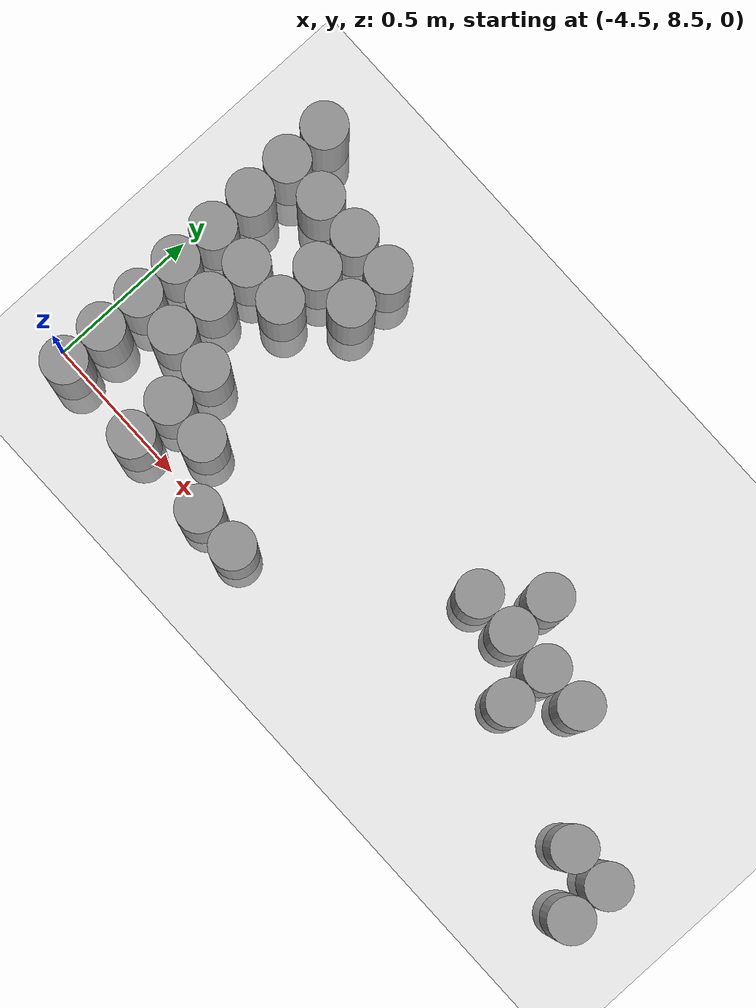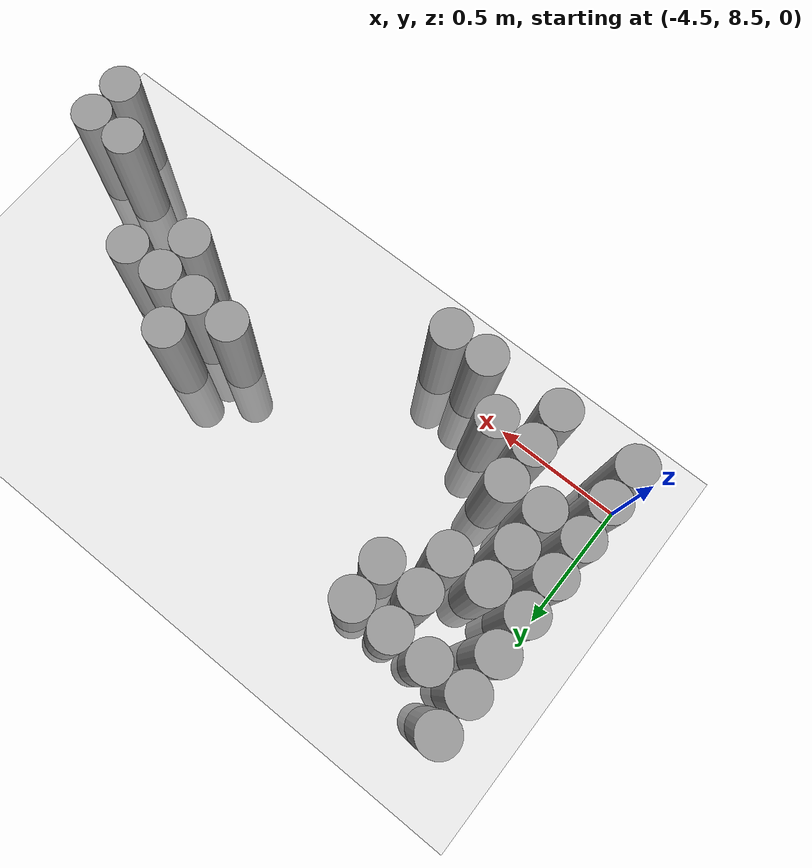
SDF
<sdf version="1.6">
 <world name="default">
  <model name="ground_plane">
   <static>1</static>
   <static>1</static>
   <link name="link">
    <collision name="collision">
     <geometry><plane><normal>0 0 1</normal><size>100 100</size></plane></geometry>
     <surface><friction><ode><mu>100</mu><mu2>50</mu2></ode></friction></surface>
    </collision>
    <visual name="visual">
     <cast_shadows>0</cast_shadows>
     <geometry><plane><normal>0 0 1</normal><size>100 100</size></plane></geometry>
     <material>
      <script><uri>file://media/materials/scripts/gazebo.material</uri><name>Gazebo/Grey</name></script>
     </material>
    </visual>
   </link>
  </model>
  <model name="unit_cylinder_118">
   <static>1</static>
   <pose>-4.425000 8.475000 0.000000 0.000000 0.000000 0.000000</pose>
   <link name="link">
    <inertial>
     <mass>1</mass>
     <inertia><ixx>0.145833</ixx><ixy>0</ixy><ixz>0</ixz><iyy>0.145833</iyy><iyz>0</iyz><izz>0.125</izz></inertia>
    </inertial>
    <collision name="collision">
     <geometry><cylinder><radius>0.075000</radius><length>1</length></cylinder></geometry>
    </collision>
    <visual name="visual">
     <geometry><cylinder><radius>0.075000</radius><length>1</length></cylinder></geometry>
     <material>
      <script><name>Gazebo/Grey</name><uri>file://media/materials/scripts/gazebo.material</uri></script>
     </material>
    </visual>
   </link>
  </model>
  <model name="unit_cylinder_119">
   <static>1</static>
   <pose>-4.425000 8.625000 0.000000 0.000000 0.000000 0.000000</pose>
   <link name="link">
    <inertial>
     <mass>1</mass>
     <inertia><ixx>0.145833</ixx><ixy>0</ixy><ixz>0</ixz><iyy>0.145833</iyy><iyz>0</iyz><izz>0.125</izz></inertia>
    </inertial>
    <collision name="collision">
     <geometry><cylinder><radius>0.075000</radius><length>1</length></cylinder></geometry>
    </collision>
    <visual name="visual">
     <geometry><cylinder><radius>0.075000</radius><length>1</length></cylinder></geometry>
     <material>
      <script><name>Gazebo/Grey</name><uri>file://media/materials/scripts/gazebo.material</uri></script>
     </material>
    </visual>
   </link>
  </model>
  <model name="unit_cylinder_120">
   <static>1</static>
   <pose>-4.425000 8.775000 0.000000 0.000000 0.000000 0.000000</pose>
   <link name="link">
    <inertial>
     <mass>1</mass>
     <inertia><ixx>0.145833</ixx><ixy>0</ixy><ixz>0</ixz><iyy>0.145833</iyy><iyz>0</iyz><izz>0.125</izz></inertia>
    </inertial>
    <collision name="collision">
     <geometry><cylinder><radius>0.075000</radius><length>1</length></cylinder></geometry>
    </collision>
    <visual name="visual">
     <geometry><cylinder><radius>0.075000</radius><length>1</length></cylinder></geometry>
     <material>
      <script><name>Gazebo/Grey</name><uri>file://media/materials/scripts/gazebo.material</uri></script>
     </material>
    </visual>
   </link>
  </model>
  <model name="unit_cylinder_121">
   <static>1</static>
   <pose>-4.425000 8.925000 0.000000 0.000000 0.000000 0.000000</pose>
   <link name="link">
    <inertial>
     <mass>1</mass>
     <inertia><ixx>0.145833</ixx><ixy>0</ixy><ixz>0</ixz><iyy>0.145833</iyy><iyz>0</iyz><izz>0.125</izz></inertia>
    </inertial>
    <collision name="collision">
     <geometry><cylinder><radius>0.075000</radius><length>1</length></cylinder></geometry>
    </collision>
    <visual name="visual">
     <geometry><cylinder><radius>0.075000</radius><length>1</length></cylinder></geometry>
     <material>
      <script><name>Gazebo/Grey</name><uri>file://media/materials/scripts/gazebo.material</uri></script>
     </material>
    </visual>
   </link>
  </model>
  <model name="unit_cylinder_122">
   <static>1</static>
   <pose>-4.425000 9.075000 0.000000 0.000000 0.000000 0.000000</pose>
   <link name="link">
    <inertial>
     <mass>1</mass>
     <inertia><ixx>0.145833</ixx><ixy>0</ixy><ixz>0</ixz><iyy>0.145833</iyy><iyz>0</iyz><izz>0.125</izz></inertia>
    </inertial>
    <collision name="collision">
     <geometry><cylinder><radius>0.075000</radius><length>1</length></cylinder></geometry>
    </collision>
    <visual name="visual">
     <geometry><cylinder><radius>0.075000</radius><length>1</length></cylinder></geometry>
     <material>
      <script><name>Gazebo/Grey</name><uri>file://media/materials/scripts/gazebo.material</uri></script>
     </material>
    </visual>
   </link>
  </model>
  <model name="unit_cylinder_123">
   <static>1</static>
   <pose>-4.425000 9.225000 0.000000 0.000000 0.000000 0.000000</pose>
   <link name="link">
    <inertial>
     <mass>1</mass>
     <inertia><ixx>0.145833</ixx><ixy>0</ixy><ixz>0</ixz><iyy>0.145833</iyy><iyz>0</iyz><izz>0.125</izz></inertia>
    </inertial>
    <collision name="collision">
     <geometry><cylinder><radius>0.075000</radius><length>1</length></cylinder></geometry>
    </collision>
    <visual name="visual">
     <geometry><cylinder><radius>0.075000</radius><length>1</length></cylinder></geometry>
     <material>
      <script><name>Gazebo/Grey</name><uri>file://media/materials/scripts/gazebo.material</uri></script>
     </material>
    </visual>
   </link>
  </model>
  <model name="unit_cylinder_124">
   <static>1</static>
   <pose>-4.425000 9.375000 0.000000 0.000000 0.000000 0.000000</pose>
   <link name="link">
    <inertial>
     <mass>1</mass>
     <inertia><ixx>0.145833</ixx><ixy>0</ixy><ixz>0</ixz><iyy>0.145833</iyy><iyz>0</iyz><izz>0.125</izz></inertia>
    </inertial>
    <collision name="collision">
     <geometry><cylinder><radius>0.075000</radius><length>1</length></cylinder></geometry>
    </collision>
    <visual name="visual">
     <geometry><cylinder><radius>0.075000</radius><length>1</length></cylinder></geometry>
     <material>
      <script><name>Gazebo/Grey</name><uri>file://media/materials/scripts/gazebo.material</uri></script>
     </material>
    </visual>
   </link>
  </model>
  <model name="unit_cylinder_125">
   <static>1</static>
   <pose>-4.425000 9.525000 0.000000 0.000000 0.000000 0.000000</pose>
   <link name="link">
    <inertial>
     <mass>1</mass>
     <inertia><ixx>0.145833</ixx><ixy>0</ixy><ixz>0</ixz><iyy>0.145833</iyy><iyz>0</iyz><izz>0.125</izz></inertia>
    </inertial>
    <collision name="collision">
     <geometry><cylinder><radius>0.075000</radius><length>1</length></cylinder></geometry>
    </collision>
    <visual name="visual">
     <geometry><cylinder><radius>0.075000</radius><length>1</length></cylinder></geometry>
     <material>
      <script><name>Gazebo/Grey</name><uri>file://media/materials/scripts/gazebo.material</uri></script>
     </material>
    </visual>
   </link>
  </model>
  <model name="unit_cylinder_130">
   <static>1</static>
   <pose>-4.275000 8.775000 0.000000 0.000000 0.000000 0.000000</pose>
   <link name="link">
    <inertial>
     <mass>1</mass>
     <inertia><ixx>0.145833</ixx><ixy>0</ixy><ixz>0</ixz><iyy>0.145833</iyy><iyz>0</iyz><izz>0.125</izz></inertia>
    </inertial>
    <collision name="collision">
     <geometry><cylinder><radius>0.075000</radius><length>1</length></cylinder></geometry>
    </collision>
    <visual name="visual">
     <geometry><cylinder><radius>0.075000</radius><length>1</length></cylinder></geometry>
     <material>
      <script><name>Gazebo/Grey</name><uri>file://media/materials/scripts/gazebo.material</uri></script>
     </material>
    </visual>
   </link>
  </model>
  <model name="unit_cylinder_131">
   <static>1</static>
   <pose>-4.275000 8.925000 0.000000 0.000000 0.000000 0.000000</pose>
   <link name="link">
    <inertial>
     <mass>1</mass>
     <inertia><ixx>0.145833</ixx><ixy>0</ixy><ixz>0</ixz><iyy>0.145833</iyy><iyz>0</iyz><izz>0.125</izz></inertia>
    </inertial>
    <collision name="collision">
     <geometry><cylinder><radius>0.075000</radius><length>1</length></cylinder></geometry>
    </collision>
    <visual name="visual">
     <geometry><cylinder><radius>0.075000</radius><length>1</length></cylinder></geometry>
     <material>
      <script><name>Gazebo/Grey</name><uri>file://media/materials/scripts/gazebo.material</uri></script>
     </material>
    </visual>
   </link>
  </model>
  <model name="unit_cylinder_132">
   <static>1</static>
   <pose>-4.275000 9.075000 0.000000 0.000000 0.000000 0.000000</pose>
   <link name="link">
    <inertial>
     <mass>1</mass>
     <inertia><ixx>0.145833</ixx><ixy>0</ixy><ixz>0</ixz><iyy>0.145833</iyy><iyz>0</iyz><izz>0.125</izz></inertia>
    </inertial>
    <collision name="collision">
     <geometry><cylinder><radius>0.075000</radius><length>1</length></cylinder></geometry>
    </collision>
    <visual name="visual">
     <geometry><cylinder><radius>0.075000</radius><length>1</length></cylinder></geometry>
     <material>
      <script><name>Gazebo/Grey</name><uri>file://media/materials/scripts/gazebo.material</uri></script>
     </material>
    </visual>
   </link>
  </model>
  <model name="unit_cylinder_133">
   <static>1</static>
   <pose>-4.275000 9.375000 0.000000 0.000000 0.000000 0.000000</pose>
   <link name="link">
    <inertial>
     <mass>1</mass>
     <inertia><ixx>0.145833</ixx><ixy>0</ixy><ixz>0</ixz><iyy>0.145833</iyy><iyz>0</iyz><izz>0.125</izz></inertia>
    </inertial>
    <collision name="collision">
     <geometry><cylinder><radius>0.075000</radius><length>1</length></cylinder></geometry>
    </collision>
    <visual name="visual">
     <geometry><cylinder><radius>0.075000</radius><length>1</length></cylinder></geometry>
     <material>
      <script><name>Gazebo/Grey</name><uri>file://media/materials/scripts/gazebo.material</uri></script>
     </material>
    </visual>
   </link>
  </model>
  <model name="unit_cylinder_137">
   <static>1</static>
   <pose>-4.125000 8.475000 0.000000 0.000000 0.000000 0.000000</pose>
   <link name="link">
    <inertial>
     <mass>1</mass>
     <inertia><ixx>0.145833</ixx><ixy>0</ixy><ixz>0</ixz><iyy>0.145833</iyy><iyz>0</iyz><izz>0.125</izz></inertia>
    </inertial>
    <collision name="collision">
     <geometry><cylinder><radius>0.075000</radius><length>1</length></cylinder></geometry>
    </collision>
    <visual name="visual">
     <geometry><cylinder><radius>0.075000</radius><length>1</length></cylinder></geometry>
     <material>
      <script><name>Gazebo/Grey</name><uri>file://media/materials/scripts/gazebo.material</uri></script>
     </material>
    </visual>
   </link>
  </model>
  <model name="unit_cylinder_138">
   <static>1</static>
   <pose>-4.125000 8.625000 0.000000 0.000000 0.000000 0.000000</pose>
   <link name="link">
    <inertial>
     <mass>1</mass>
     <inertia><ixx>0.145833</ixx><ixy>0</ixy><ixz>0</ixz><iyy>0.145833</iyy><iyz>0</iyz><izz>0.125</izz></inertia>
    </inertial>
    <collision name="collision">
     <geometry><cylinder><radius>0.075000</radius><length>1</length></cylinder></geometry>
    </collision>
    <visual name="visual">
     <geometry><cylinder><radius>0.075000</radius><length>1</length></cylinder></geometry>
     <material>
      <script><name>Gazebo/Grey</name><uri>file://media/materials/scripts/gazebo.material</uri></script>
     </material>
    </visual>
   </link>
  </model>
  <model name="unit_cylinder_139">
   <static>1</static>
   <pose>-4.125000 8.775000 0.000000 0.000000 0.000000 0.000000</pose>
   <link name="link">
    <inertial>
     <mass>1</mass>
     <inertia><ixx>0.145833</ixx><ixy>0</ixy><ixz>0</ixz><iyy>0.145833</iyy><iyz>0</iyz><izz>0.125</izz></inertia>
    </inertial>
    <collision name="collision">
     <geometry><cylinder><radius>0.075000</radius><length>1</length></cylinder></geometry>
    </collision>
    <visual name="visual">
     <geometry><cylinder><radius>0.075000</radius><length>1</length></cylinder></geometry>
     <material>
      <script><name>Gazebo/Grey</name><uri>file://media/materials/scripts/gazebo.material</uri></script>
     </material>
    </visual>
   </link>
  </model>
  <model name="unit_cylinder_140">
   <static>1</static>
   <pose>-4.125000 9.075000 0.000000 0.000000 0.000000 0.000000</pose>
   <link name="link">
    <inertial>
     <mass>1</mass>
     <inertia><ixx>0.145833</ixx><ixy>0</ixy><ixz>0</ixz><iyy>0.145833</iyy><iyz>0</iyz><izz>0.125</izz></inertia>
    </inertial>
    <collision name="collision">
     <geometry><cylinder><radius>0.075000</radius><length>1</length></cylinder></geometry>
    </collision>
    <visual name="visual">
     <geometry><cylinder><radius>0.075000</radius><length>1</length></cylinder></geometry>
     <material>
      <script><name>Gazebo/Grey</name><uri>file://media/materials/scripts/gazebo.material</uri></script>
     </material>
    </visual>
   </link>
  </model>
  <model name="unit_cylinder_141">
   <static>1</static>
   <pose>-4.125000 9.225000 0.000000 0.000000 0.000000 0.000000</pose>
   <link name="link">
    <inertial>
     <mass>1</mass>
     <inertia><ixx>0.145833</ixx><ixy>0</ixy><ixz>0</ixz><iyy>0.145833</iyy><iyz>0</iyz><izz>0.125</izz></inertia>
    </inertial>
    <collision name="collision">
     <geometry><cylinder><radius>0.075000</radius><length>1</length></cylinder></geometry>
    </collision>
    <visual name="visual">
     <geometry><cylinder><radius>0.075000</radius><length>1</length></cylinder></geometry>
     <material>
      <script><name>Gazebo/Grey</name><uri>file://media/materials/scripts/gazebo.material</uri></script>
     </material>
    </visual>
   </link>
  </model>
  <model name="unit_cylinder_142">
   <static>1</static>
   <pose>-4.125000 9.375000 0.000000 0.000000 0.000000 0.000000</pose>
   <link name="link">
    <inertial>
     <mass>1</mass>
     <inertia><ixx>0.145833</ixx><ixy>0</ixy><ixz>0</ixz><iyy>0.145833</iyy><iyz>0</iyz><izz>0.125</izz></inertia>
    </inertial>
    <collision name="collision">
     <geometry><cylinder><radius>0.075000</radius><length>1</length></cylinder></geometry>
    </collision>
    <visual name="visual">
     <geometry><cylinder><radius>0.075000</radius><length>1</length></cylinder></geometry>
     <material>
      <script><name>Gazebo/Grey</name><uri>file://media/materials/scripts/gazebo.material</uri></script>
     </material>
    </visual>
   </link>
  </model>
  <model name="unit_cylinder_148">
   <static>1</static>
   <pose>-3.975000 8.625000 0.000000 0.000000 0.000000 0.000000</pose>
   <link name="link">
    <inertial>
     <mass>1</mass>
     <inertia><ixx>0.145833</ixx><ixy>0</ixy><ixz>0</ixz><iyy>0.145833</iyy><iyz>0</iyz><izz>0.125</izz></inertia>
    </inertial>
    <collision name="collision">
     <geometry><cylinder><radius>0.075000</radius><length>1</length></cylinder></geometry>
    </collision>
    <visual name="visual">
     <geometry><cylinder><radius>0.075000</radius><length>1</length></cylinder></geometry>
     <material>
      <script><name>Gazebo/Grey</name><uri>file://media/materials/scripts/gazebo.material</uri></script>
     </material>
    </visual>
   </link>
  </model>
  <model name="unit_cylinder_149">
   <static>1</static>
   <pose>-3.975000 9.225000 0.000000 0.000000 0.000000 0.000000</pose>
   <link name="link">
    <inertial>
     <mass>1</mass>
     <inertia><ixx>0.145833</ixx><ixy>0</ixy><ixz>0</ixz><iyy>0.145833</iyy><iyz>0</iyz><izz>0.125</izz></inertia>
    </inertial>
    <collision name="collision">
     <geometry><cylinder><radius>0.075000</radius><length>1</length></cylinder></geometry>
    </collision>
    <visual name="visual">
     <geometry><cylinder><radius>0.075000</radius><length>1</length></cylinder></geometry>
     <material>
      <script><name>Gazebo/Grey</name><uri>file://media/materials/scripts/gazebo.material</uri></script>
     </material>
    </visual>
   </link>
  </model>
  <model name="unit_cylinder_150">
   <static>1</static>
   <pose>-3.975000 9.375000 0.000000 0.000000 0.000000 0.000000</pose>
   <link name="link">
    <inertial>
     <mass>1</mass>
     <inertia><ixx>0.145833</ixx><ixy>0</ixy><ixz>0</ixz><iyy>0.145833</iyy><iyz>0</iyz><izz>0.125</izz></inertia>
    </inertial>
    <collision name="collision">
     <geometry><cylinder><radius>0.075000</radius><length>1</length></cylinder></geometry>
    </collision>
    <visual name="visual">
     <geometry><cylinder><radius>0.075000</radius><length>1</length></cylinder></geometry>
     <material>
      <script><name>Gazebo/Grey</name><uri>file://media/materials/scripts/gazebo.material</uri></script>
     </material>
    </visual>
   </link>
  </model>
  <model name="unit_cylinder_158">
   <static>1</static>
   <pose>-3.825000 8.475000 0.000000 0.000000 0.000000 0.000000</pose>
   <link name="link">
    <inertial>
     <mass>1</mass>
     <inertia><ixx>0.145833</ixx><ixy>0</ixy><ixz>0</ixz><iyy>0.145833</iyy><iyz>0</iyz><izz>0.125</izz></inertia>
    </inertial>
    <collision name="collision">
     <geometry><cylinder><radius>0.075000</radius><length>1</length></cylinder></geometry>
    </collision>
    <visual name="visual">
     <geometry><cylinder><radius>0.075000</radius><length>1</length></cylinder></geometry>
     <material>
      <script><name>Gazebo/Grey</name><uri>file://media/materials/scripts/gazebo.material</uri></script>
     </material>
    </visual>
   </link>
  </model>
  <model name="unit_cylinder_163">
   <static>1</static>
   <pose>-3.675000 8.475000 0.000000 0.000000 0.000000 0.000000</pose>
   <link name="link">
    <inertial>
     <mass>1</mass>
     <inertia><ixx>0.145833</ixx><ixy>0</ixy><ixz>0</ixz><iyy>0.145833</iyy><iyz>0</iyz><izz>0.125</izz></inertia>
    </inertial>
    <collision name="collision">
     <geometry><cylinder><radius>0.075000</radius><length>1</length></cylinder></geometry>
    </collision>
    <visual name="visual">
     <geometry><cylinder><radius>0.075000</radius><length>1</length></cylinder></geometry>
     <material>
      <script><name>Gazebo/Grey</name><uri>file://media/materials/scripts/gazebo.material</uri></script>
     </material>
    </visual>
   </link>
  </model>
  <model name="unit_cylinder_168">
   <static>1</static>
   <pose>-3.075000 8.925000 0.000000 0.000000 0.000000 0.000000</pose>
   <link name="link">
    <inertial>
     <mass>1</mass>
     <inertia><ixx>0.145833</ixx><ixy>0</ixy><ixz>0</ixz><iyy>0.145833</iyy><iyz>0</iyz><izz>0.125</izz></inertia>
    </inertial>
    <collision name="collision">
     <geometry><cylinder><radius>0.075000</radius><length>1</length></cylinder></geometry>
    </collision>
    <visual name="visual">
     <geometry><cylinder><radius>0.075000</radius><length>1</length></cylinder></geometry>
     <material>
      <script><name>Gazebo/Grey</name><uri>file://media/materials/scripts/gazebo.material</uri></script>
     </material>
    </visual>
   </link>
  </model>
  <model name="unit_cylinder_172">
   <static>1</static>
   <pose>-2.925000 8.925000 0.000000 0.000000 0.000000 0.000000</pose>
   <link name="link">
    <inertial>
     <mass>1</mass>
     <inertia><ixx>0.145833</ixx><ixy>0</ixy><ixz>0</ixz><iyy>0.145833</iyy><iyz>0</iyz><izz>0.125</izz></inertia>
    </inertial>
    <collision name="collision">
     <geometry><cylinder><radius>0.075000</radius><length>1</length></cylinder></geometry>
    </collision>
    <visual name="visual">
     <geometry><cylinder><radius>0.075000</radius><length>1</length></cylinder></geometry>
     <material>
      <script><name>Gazebo/Grey</name><uri>file://media/materials/scripts/gazebo.material</uri></script>
     </material>
    </visual>
   </link>
  </model>
  <model name="unit_cylinder_173">
   <static>1</static>
   <pose>-2.925000 9.075000 0.000000 0.000000 0.000000 0.000000</pose>
   <link name="link">
    <inertial>
     <mass>1</mass>
     <inertia><ixx>0.145833</ixx><ixy>0</ixy><ixz>0</ixz><iyy>0.145833</iyy><iyz>0</iyz><izz>0.125</izz></inertia>
    </inertial>
    <collision name="collision">
     <geometry><cylinder><radius>0.075000</radius><length>1</length></cylinder></geometry>
    </collision>
    <visual name="visual">
     <geometry><cylinder><radius>0.075000</radius><length>1</length></cylinder></geometry>
     <material>
      <script><name>Gazebo/Grey</name><uri>file://media/materials/scripts/gazebo.material</uri></script>
     </material>
    </visual>
   </link>
  </model>
  <model name="unit_cylinder_176">
   <static>1</static>
   <pose>-2.775000 8.775000 0.000000 0.000000 0.000000 0.000000</pose>
   <link name="link">
    <inertial>
     <mass>1</mass>
     <inertia><ixx>0.145833</ixx><ixy>0</ixy><ixz>0</ixz><iyy>0.145833</iyy><iyz>0</iyz><izz>0.125</izz></inertia>
    </inertial>
    <collision name="collision">
     <geometry><cylinder><radius>0.075000</radius><length>1</length></cylinder></geometry>
    </collision>
    <visual name="visual">
     <geometry><cylinder><radius>0.075000</radius><length>1</length></cylinder></geometry>
     <material>
      <script><name>Gazebo/Grey</name><uri>file://media/materials/scripts/gazebo.material</uri></script>
     </material>
    </visual>
   </link>
  </model>
  <model name="unit_cylinder_177">
   <static>1</static>
   <pose>-2.775000 8.925000 0.000000 0.000000 0.000000 0.000000</pose>
   <link name="link">
    <inertial>
     <mass>1</mass>
     <inertia><ixx>0.145833</ixx><ixy>0</ixy><ixz>0</ixz><iyy>0.145833</iyy><iyz>0</iyz><izz>0.125</izz></inertia>
    </inertial>
    <collision name="collision">
     <geometry><cylinder><radius>0.075000</radius><length>1</length></cylinder></geometry>
    </collision>
    <visual name="visual">
     <geometry><cylinder><radius>0.075000</radius><length>1</length></cylinder></geometry>
     <material>
      <script><name>Gazebo/Grey</name><uri>file://media/materials/scripts/gazebo.material</uri></script>
     </material>
    </visual>
   </link>
  </model>
  <model name="unit_cylinder_179">
   <static>1</static>
   <pose>-2.625000 8.925000 0.000000 0.000000 0.000000 0.000000</pose>
   <link name="link">
    <inertial>
     <mass>1</mass>
     <inertia><ixx>0.145833</ixx><ixy>0</ixy><ixz>0</ixz><iyy>0.145833</iyy><iyz>0</iyz><izz>0.125</izz></inertia>
    </inertial>
    <collision name="collision">
     <geometry><cylinder><radius>0.075000</radius><length>1</length></cylinder></geometry>
    </collision>
    <visual name="visual">
     <geometry><cylinder><radius>0.075000</radius><length>1</length></cylinder></geometry>
     <material>
      <script><name>Gazebo/Grey</name><uri>file://media/materials/scripts/gazebo.material</uri></script>
     </material>
    </visual>
   </link>
  </model>
  <model name="unit_cylinder_180">
   <static>1</static>
   <pose>-2.325000 8.625000 0.000000 0.000000 0.000000 0.000000</pose>
   <link name="link">
    <inertial>
     <mass>1</mass>
     <inertia><ixx>0.145833</ixx><ixy>0</ixy><ixz>0</ixz><iyy>0.145833</iyy><iyz>0</iyz><izz>0.125</izz></inertia>
    </inertial>
    <collision name="collision">
     <geometry><cylinder><radius>0.075000</radius><length>1</length></cylinder></geometry>
    </collision>
    <visual name="visual">
     <geometry><cylinder><radius>0.075000</radius><length>1</length></cylinder></geometry>
     <material>
      <script><name>Gazebo/Grey</name><uri>file://media/materials/scripts/gazebo.material</uri></script>
     </material>
    </visual>
   </link>
  </model>
  <model name="unit_cylinder_181">
   <static>1</static>
   <pose>-2.175000 8.475000 0.000000 0.000000 0.000000 0.000000</pose>
   <link name="link">
    <inertial>
     <mass>1</mass>
     <inertia><ixx>0.145833</ixx><ixy>0</ixy><ixz>0</ixz><iyy>0.145833</iyy><iyz>0</iyz><izz>0.125</izz></inertia>
    </inertial>
    <collision name="collision">
     <geometry><cylinder><radius>0.075000</radius><length>1</length></cylinder></geometry>
    </collision>
    <visual name="visual">
     <geometry><cylinder><radius>0.075000</radius><length>1</length></cylinder></geometry>
     <material>
      <script><name>Gazebo/Grey</name><uri>file://media/materials/scripts/gazebo.material</uri></script>
     </material>
    </visual>
   </link>
  </model>
  <model name="unit_cylinder_182">
   <static>1</static>
   <pose>-2.175000 8.625000 0.000000 0.000000 0.000000 0.000000</pose>
   <link name="link">
    <inertial>
     <mass>1</mass>
     <inertia><ixx>0.145833</ixx><ixy>0</ixy><ixz>0</ixz><iyy>0.145833</iyy><iyz>0</iyz><izz>0.125</izz></inertia>
    </inertial>
    <collision name="collision">
     <geometry><cylinder><radius>0.075000</radius><length>1</length></cylinder></geometry>
    </collision>
    <visual name="visual">
     <geometry><cylinder><radius>0.075000</radius><length>1</length></cylinder></geometry>
     <material>
      <script><name>Gazebo/Grey</name><uri>file://media/materials/scripts/gazebo.material</uri></script>
     </material>
    </visual>
   </link>
  </model>
 </world>
</sdf>
